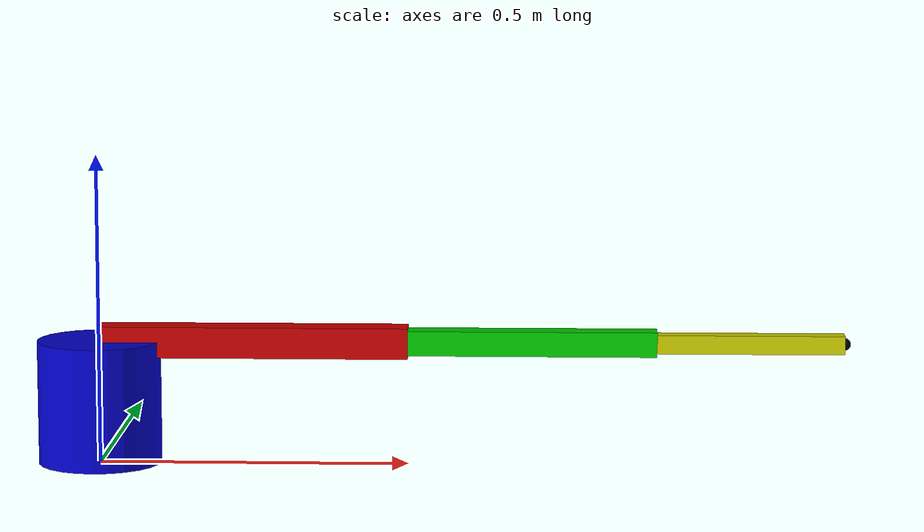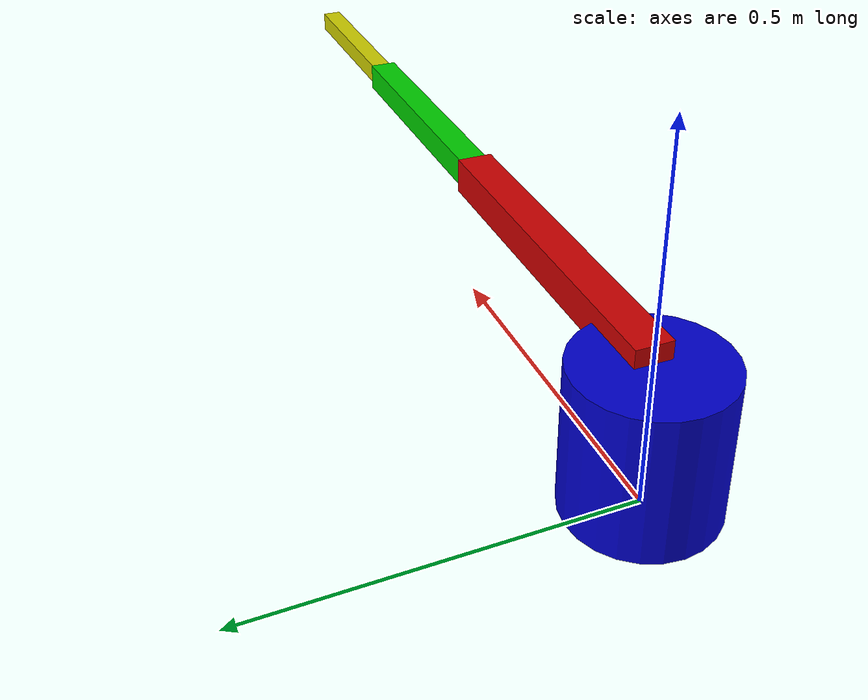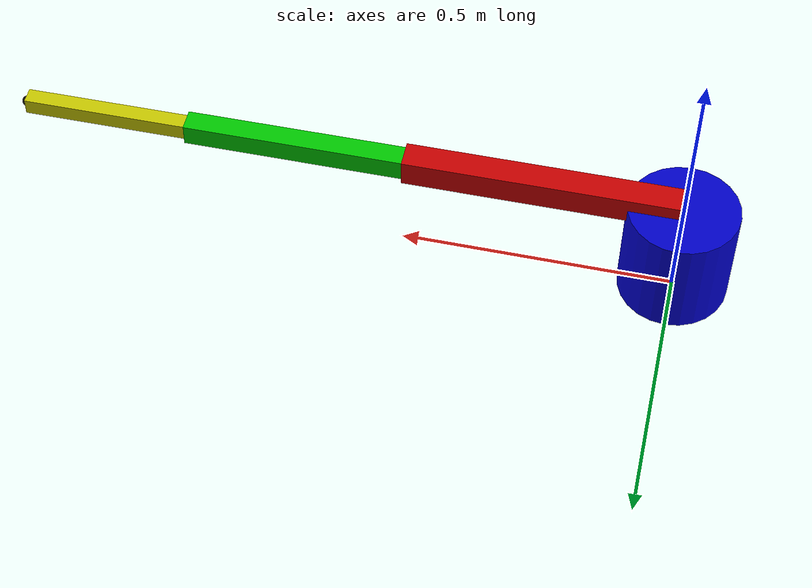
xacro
<?xml version="1.0"?>
<robot xmlns:xacro="http://www.ros.org/wiki/xacro" name="rrp_robot">

  <!-- Define colors -->
  <material name="blue">
    <color rgba="0 0 0.8 1"/>
  </material>
  <material name="red">
    <color rgba="0.8 0 0 1"/>
  </material>
  <material name="green">
    <color rgba="0 0.8 0 1"/>
  </material>
  <material name="yellow">
    <color rgba="0.8 0.8 0 1"/>
  </material>
  <material name="black">
    <color rgba="0 0 0 1"/>
  </material>

  <!-- Define properties -->
  <xacro:property name="base_radius" value="0.1" />
  <xacro:property name="base_height" value="0.2" />
  <xacro:property name="arm1_length" value="0.5" />
  <xacro:property name="arm1_width" value="0.05" />
  <xacro:property name="arm1_height" value="0.05" />
  <xacro:property name="arm2_length" value="0.4" />
  <xacro:property name="arm2_width" value="0.04" />
  <xacro:property name="arm2_height" value="0.04" />
  <xacro:property name="prismatic_length" value="0.3" />
  <xacro:property name="prismatic_width" value="0.03" />
  <xacro:property name="prismatic_height" value="0.03" />

  <!-- World Frame -->
  <link name="world"/>

  <!-- Fixed Base to World -->
  <joint name="world_to_base" type="fixed">
    <parent link="world"/>
    <child link="base_link"/>
    <origin xyz="0 0 0" rpy="0 0 0"/>
  </joint>

  <!-- Base Link (Cylinder) -->
  <link name="base_link">
    <visual>
      <origin xyz="0 0 ${base_height/2}" rpy="0 0 0"/>
      <geometry>
        <cylinder radius="${base_radius}" length="${base_height}"/>
      </geometry>
      <material name="blue"/>
    </visual>
    <collision>
      <origin xyz="0 0 ${base_height/2}" rpy="0 0 0"/>
      <geometry>
        <cylinder radius="${base_radius}" length="${base_height}"/>
      </geometry>
    </collision>
    <inertial>
      <origin xyz="0 0 ${base_height/2}" rpy="0 0 0"/>
      <mass value="2"/>
      <inertia ixx="0.01" ixy="0" ixz="0" iyy="0.01" iyz="0" izz="0.01"/>
    </inertial>
  </link>

  <!-- First Revolute Joint with Limits -->
  <joint name="joint1" type="revolute">
    <parent link="base_link"/>
    <child link="arm1_link"/>
    <origin xyz="0 0 ${base_height}" rpy="0 0 0"/>
    <axis xyz="0 0 1"/>
    <limit lower="${-1.57}" upper="${1.57}" effort="10" velocity="1.0"/>
  </joint>

  <!-- First Arm Link (Box) -->
  <link name="arm1_link">
    <visual>
      <origin xyz="${arm1_length/2} 0 0" rpy="0 0 0"/>
      <geometry>
        <box size="${arm1_length} ${arm1_width} ${arm1_height}"/>
      </geometry>
      <material name="red"/>
    </visual>
    <collision>
      <origin xyz="${arm1_length/2} 0 0" rpy="0 0 0"/>
      <geometry>
        <box size="${arm1_length} ${arm1_width} ${arm1_height}"/>
      </geometry>
    </collision>
    <inertial>
      <origin xyz="${arm1_length/2} 0 0" rpy="0 0 0"/>
      <mass value="0.5"/>
      <inertia ixx="0.01" ixy="0" ixz="0" iyy="0.01" iyz="0" izz="0.01"/>
    </inertial>
  </link>

  <!-- Second Revolute Joint with Limits -->
  <joint name="joint2" type="revolute">
    <parent link="arm1_link"/>
    <child link="arm2_link"/>
    <origin xyz="${arm1_length} 0 0" rpy="0 0 0"/>
    <axis xyz="0 0 1"/>
    <limit lower="${-1.57}" upper="${1.57}" effort="10" velocity="1.0"/>
  </joint>

  <!-- Second Arm Link (Box) -->
  <link name="arm2_link">
    <visual>
      <origin xyz="${arm2_length/2} 0 0" rpy="0 0 0"/>
      <geometry>
        <box size="${arm2_length} ${arm2_width} ${arm2_height}"/>
      </geometry>
      <material name="green"/>
    </visual>
    <collision>
      <origin xyz="${arm2_length/2} 0 0" rpy="0 0 0"/>
      <geometry>
        <box size="${arm2_length} ${arm2_width} ${arm2_height}"/>
      </geometry>
    </collision>
    <inertial>
      <origin xyz="${arm2_length/2} 0 0" rpy="0 0 0"/>
      <mass value="0.3"/>
      <inertia ixx="0.01" ixy="0" ixz="0" iyy="0.01" iyz="0" izz="0.01"/>
    </inertial>
  </link>

  <!-- Prismatic Joint with Limits -->
  <joint name="joint3" type="prismatic">
    <parent link="arm2_link"/>
    <child link="prismatic_link"/>
    <origin xyz="${arm2_length} 0 0" rpy="0 0 0"/>
    <axis xyz="1 0 0"/>
    <limit lower="0" upper="${prismatic_length}" effort="10" velocity="0.5"/>
  </joint>

  <!-- Prismatic Link (Box) -->
  <link name="prismatic_link">
    <visual>
      <origin xyz="${prismatic_length/2} 0 0" rpy="0 0 0"/>
      <geometry>
        <box size="${prismatic_length} ${prismatic_width} ${prismatic_height}"/>
      </geometry>
      <material name="yellow"/>
    </visual>
    <collision>
      <origin xyz="${prismatic_length/2} 0 0" rpy="0 0 0"/>
      <geometry>
        <box size="${prismatic_length} ${prismatic_width} ${prismatic_height}"/>
      </geometry>
    </collision>
    <inertial>
      <origin xyz="${prismatic_length/2} 0 0" rpy="0 0 0"/>
      <mass value="0.2"/>
      <inertia ixx="0.01" ixy="0" ixz="0" iyy="0.01" iyz="0" izz="0.01"/>
    </inertial>
  </link>

  <!-- End Effector (Small tip) -->
  <link name="end_effector">
    <visual>
      <origin xyz="0 0 0" rpy="0 0 0"/>
      <geometry>
        <sphere radius="0.01"/>
      </geometry>
      <material name="black"/>
    </visual>
  </link>

  <joint name="end_effector_joint" type="fixed">
    <parent link="prismatic_link"/>
    <child link="end_effector"/>
    <origin xyz="${prismatic_length} 0 0" rpy="0 0 0"/>
  </joint>

</robot>
